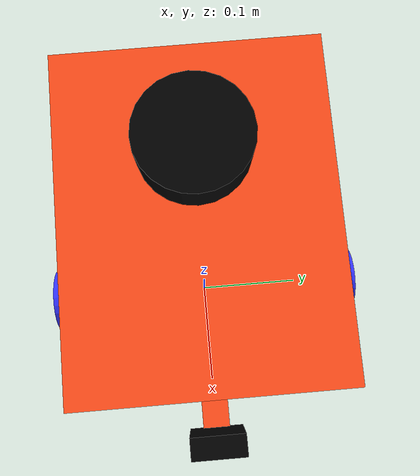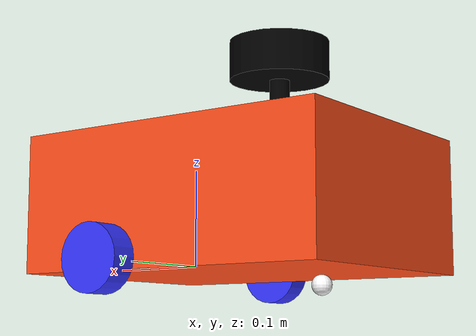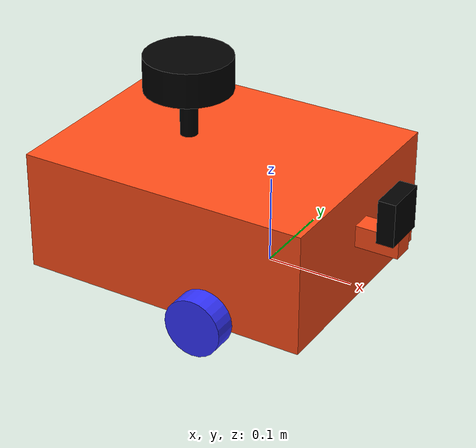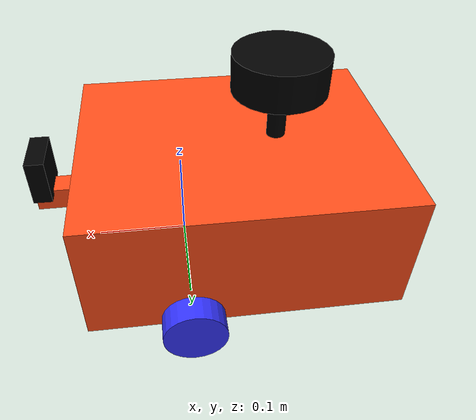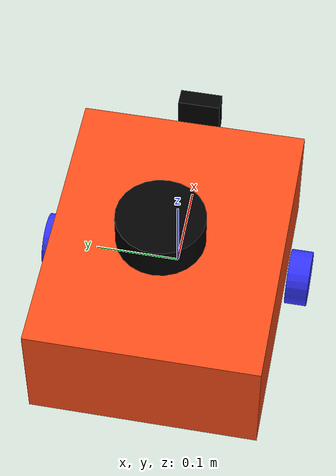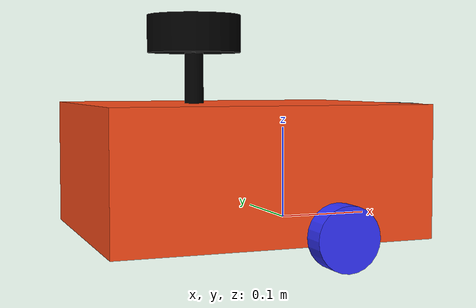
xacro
<?xml version="1.0"?>
<robot xmlns:xacro="http://www.ros.org/wiki/xacro" name="Robot" >

    <xacro:include filename="inertial_macros.xacro"/>
    <xacro:include filename="ros2_control.xacro" />

    <xacro:property name="chassis_length" value="0.335"/>
    <xacro:property name="chassis_width" value="0.265"/>
    <xacro:property name="chassis_height" value="0.138"/>
    <xacro:property name="chassis_mass" value="1.0"/>
    <xacro:property name="wheel_radius" value="0.033"/>
    <xacro:property name="wheel_thickness" value="0.026"/>
    <xacro:property name="wheel_mass" value="0.05"/>
    <xacro:property name="wheel_offset_x" value="0.226"/>
    <xacro:property name="wheel_offset_y" value="0.1485"/>
    <xacro:property name="wheel_offset_z" value="0.01"/>
    <xacro:property name="caster_wheel_radius" value="0.01"/>
    <xacro:property name="caster_wheel_mass" value="0.01"/>
    <xacro:property name="caster_wheel_offset_x" value="0.075"/>
    <xacro:property name="caster_wheel_offset_z" value="${wheel_offset_z - wheel_radius + caster_wheel_radius}"/>

    <material name="white">
        <color rgba="1 1 1 1" />
    </material>

    <material name="orange">
        <color rgba="1 0.3 0.1 1"/>
    </material>

    <material name="blue">
        <color rgba="0.2 0.2 1 1"/>
    </material>

    <material name="black">
        <color rgba="0 0 0 1"/>
    </material>

    <material name="red">
        <color rgba="1 0 0 1"/>
    </material>

    <!-- BASE LINK -->

    <link name="base_link">

    </link>

    <!-- BASE_FOOTPRINT LINK -->

    <joint name="base_footprint_joint" type="fixed">
        <parent link="base_link"/>
        <child link="base_footprint"/>
        <origin xyz="0 0 0" rpy="0 0 0"/>
    </joint>

    <link name="base_footprint">
    </link>

    <!-- CHASSIS LINK -->

    <joint name="chassis_joint" type="fixed">
        <parent link="base_link"/>
        <child link="chassis"/>
        <origin xyz="${-wheel_offset_x} 0 ${-wheel_offset_z}"/>
    </joint>

    <link name="chassis">
        <visual>
            <origin xyz="${chassis_length/2} 0 ${chassis_height/2}"/>
            <geometry>
                <box size="${chassis_length} ${chassis_width} ${chassis_height}"/>
            </geometry>
            <material name="orange"/>
        </visual>
        <collision>
            <origin xyz="${chassis_length/2} 0 ${chassis_height/2}"/>
            <geometry>
                <box size="${chassis_length} ${chassis_width} ${chassis_height}"/>
            </geometry>
        </collision>
        <xacro:inertial_box mass="0.5" x="${chassis_length}" y="${chassis_width}" z="${chassis_height}">
            <origin xyz="${chassis_length/2} 0 ${chassis_height/2}" rpy="0 0 0"/>
        </xacro:inertial_box>
    </link>

    <gazebo reference="chassis">
        <material>Gazebo/Orange</material>
    </gazebo>

    <!-- LEFT WHEEL LINK -->

    <joint name="left_wheel_joint" type="continuous">
        <parent link="base_link"/>
        <child link="left_wheel"/>
        <origin xyz="0 ${wheel_offset_y} 0" rpy="-${pi/2} 0 0" />
        <axis xyz="0 0 1"/>
    </joint>

    <link name="left_wheel">
        <visual>
            <geometry>
                <cylinder radius="${wheel_radius}" length="${wheel_thickness}"/>
            </geometry>
            <material name="blue"/>
        </visual>
        <collision>
            <geometry>
                <sphere radius="${wheel_radius}"/>
            </geometry>
        </collision>
        <xacro:inertial_cylinder mass="${wheel_mass}" length="${wheel_thickness}" radius="${wheel_radius}">
            <origin xyz="0 0 0" rpy="0 0 0"/>
        </xacro:inertial_cylinder>
    </link>

    <gazebo reference="left_wheel">
        <material>Gazebo/Blue</material>
        <mu1>1000000000000000.0</mu1>
        <mu2>1000000000000000.0</mu2>
        <kp>1000000000000.0</kp>
        <kd>10.0</kd>
        <minDepth>0.001</minDepth>
        <maxVel>0.1</maxVel>
        <fdir1>1 0 0</fdir1>
    </gazebo>

    <!-- RIGHT WHEEL LINK -->

    <joint name="right_wheel_joint" type="continuous">
        <parent link="base_link"/>
        <child link="right_wheel"/>
        <origin xyz="0 ${-wheel_offset_y} 0" rpy="${pi/2} 0 0" />
        <axis xyz="0 0 -1"/>
    </joint>

    <link name="right_wheel">
        <visual>
            <geometry>
                <cylinder radius="${wheel_radius}" length="${wheel_thickness}"/>
            </geometry>
            <material name="blue"/>
        </visual>
        <collision>
            <geometry>
                <sphere radius="${wheel_radius}"/>
            </geometry>
        </collision>
        <xacro:inertial_cylinder mass="${wheel_mass}" length="${wheel_thickness}" radius="${wheel_radius}">
            <origin xyz="0 0 0" rpy="0 0 0"/>
        </xacro:inertial_cylinder>
    </link>

    <gazebo reference="right_wheel">
        <material>Gazebo/Blue</material>
        <mu1>1000000000000000.0</mu1>
        <mu2>1000000000000000.0</mu2>
        <kp>1000000000000.0</kp>
        <kd>10.0</kd>
        <minDepth>0.001</minDepth>
        <maxVel>0.1</maxVel>
        <fdir1>1 0 0</fdir1>
    </gazebo>

    <!-- CASTER WHEEL LINK -->

    <joint name="caster_wheel_joint" type="fixed">
        <parent link="chassis"/>
        <child link="caster_wheel"/>
        <origin xyz="${caster_wheel_offset_x} 0 ${caster_wheel_offset_z}"/>
    </joint>

    <link name="caster_wheel">
        <visual>
            <geometry>
                <sphere radius="${caster_wheel_radius}"/>
            </geometry>
            <material name="white"/>
        </visual>
        <collision>
            <geometry>
                <sphere radius="${caster_wheel_radius}"/>
            </geometry>
        </collision>
        <xacro:inertial_sphere mass="${caster_wheel_mass}" radius="${caster_wheel_radius}">
            <origin xyz="0 0 0" rpy="0 0 0"/>
        </xacro:inertial_sphere>
    </link>

    <gazebo reference="caster_wheel">
        <material>Gazebo/White</material>
        <mu1>0.1</mu1>
        <mu2>0.1</mu2>
        <kp>1000000.0</kp>
        <kd>100.0</kd>
        <minDepth>0.001</minDepth>
        <maxVel>1.0</maxVel>
    </gazebo>

    <!-- Laser Link -->

    <joint name="laser_joint" type="fixed">
        <parent link="chassis"/>
        <child link="laser_frame"/>
        <origin xyz="0.122 0 0.212" rpy="0 0 0"/>
    </joint>

    <link name="laser_frame">
        <visual>
            <geometry>
                <cylinder radius="0.05" length="0.04"/>
            </geometry>
            <material name="black"/>
        </visual>
        <visual>
            <origin xyz="0 0 -0.05"/>
            <geometry>
                <cylinder radius="0.01" length="0.1"/>
            </geometry>
            <material name="black"/>
        </visual>
        <collision>
            <geometry>
                <cylinder radius="0.05" length="0.04"/>
            </geometry>
        </collision>
        <xacro:inertial_cylinder mass="0.1" length="0.04" radius="0.05">
            <origin xyz="0 0 0" rpy="0 0 0"/>
        </xacro:inertial_cylinder>
    </link>

    <!-- IMU Link -->

    <link name="imu_link">
        <visual>
            <geometry>
                <box size="0.005 0.005 0.005"/>
            </geometry>
        </visual>

        <collision>
            <geometry>
                <box size="0.005 0.005 0.005"/>
            </geometry>
        </collision>
        <inertial>
            <mass value="1e-5" />
            <origin xyz="0 0 0" rpy="0 0 0"/>
            <inertia ixx="1e-6" ixy="0" ixz="0" iyy="1e-6" iyz="0" izz="1e-6" />
        </inertial>
    </link>

    <joint name="imu_joint" type="fixed">
        <parent link="base_link"/>
        <child link="imu_link"/>
        <origin xyz="0 0 0.01"/>
    </joint>

    <gazebo reference="imu_link">
        <sensor name="imu_sensor" type="imu">
            <plugin filename="libgazebo_ros_imu_sensor.so" name="imu_plugin">
                <ros>
                    <namespace>/demo</namespace>
                    <remapping>~/out:=imu</remapping>
                </ros>
                <initial_orientation_as_reference>false</initial_orientation_as_reference>
            </plugin>
            <always_on>true</always_on>
            <update_rate>100</update_rate>
            <visualize>true</visualize>
            <imu>
                <angular_velocity>
                    <x>
                        <noise type="gaussian">
                            <mean>0.0</mean>
                            <stddev>2e-4</stddev>
                            <bias_mean>0.0000075</bias_mean>
                            <bias_stddev>0.0000008</bias_stddev>
                        </noise>
                    </x>
                    <y>
                        <noise type="gaussian">
                            <mean>0.0</mean>
                            <stddev>2e-4</stddev>
                            <bias_mean>0.0000075</bias_mean>
                            <bias_stddev>0.0000008</bias_stddev>
                        </noise>
                    </y>
                    <z>
                        <noise type="gaussian">
                            <mean>0.0</mean>
                            <stddev>2e-4</stddev>
                            <bias_mean>0.0000075</bias_mean>
                            <bias_stddev>0.0000008</bias_stddev>
                        </noise>
                    </z>
                </angular_velocity>
                <linear_acceleration>
                    <x>
                        <noise type="gaussian">
                            <mean>0.0</mean>
                            <stddev>1.7e-2</stddev>
                            <bias_mean>0.1</bias_mean>
                            <bias_stddev>0.001</bias_stddev>
                        </noise>
                    </x>
                    <y>
                        <noise type="gaussian">
                            <mean>0.0</mean>
                            <stddev>1.7e-2</stddev>
                            <bias_mean>0.1</bias_mean>
                            <bias_stddev>0.001</bias_stddev>
                        </noise>
                    </y>
                    <z>
                        <noise type="gaussian">
                            <mean>0.0</mean>
                            <stddev>1.7e-2</stddev>
                            <bias_mean>0.1</bias_mean>
                            <bias_stddev>0.001</bias_stddev>
                        </noise>
                    </z>
                </linear_acceleration>
            </imu>
        </sensor>
    </gazebo>

    <gazebo reference="laser_frame">
        <material>Gazebo/Black</material>

        <sensor name="laser" type="ray">
            <pose> 0 0 0 0 0 0 </pose>
            <visualize>false</visualize>
            <update_rate>10</update_rate>
            <ray>
                <scan>
                    <horizontal>
                        <samples>360</samples>
                        <min_angle>-3.14</min_angle>
                        <max_angle>3.14</max_angle>
                    </horizontal>
                </scan>
                <range>
                    <min>0.3</min>
                    <max>12</max>
                </range>
            </ray>
            <plugin name="laser_controller" filename="libgazebo_ros_ray_sensor.so">
                <ros>
                    <remapping>~/out:=scan</remapping>
                </ros>
                <output_type>sensor_msgs/LaserScan</output_type>
                <frame_name>laser_frame</frame_name>
            </plugin>
        </sensor>
    </gazebo>

    <!-- Camera Link -->

    <joint name="camera_mount_joint" type="fixed">
        <parent link="base_link"/>
        <child link="camera_mount"/>
        <axis xyz="0 0 0" />
        <origin xyz="0.134 0 ${chassis_height/2}" rpy="0 0 0"/>
    </joint>

    <link name="camera_mount">
        <visual>
            <origin xyz="0 0 0"/>
            <geometry>
                <box size="0.05 0.025 0.025"/>
            </geometry>
            <material name="orange"/>
        </visual>
        <collision>
            <origin xyz="0 0 0"/>
            <geometry>
                <box size="0.05 0.025 0.025"/>
            </geometry>
        </collision>
        <inertial>
            <mass value="1e-5" />
            <origin xyz="0 0 0" rpy="0 0 0"/>
            <inertia ixx="1e-6" ixy="0" ixz="0" iyy="1e-6" iyz="0" izz="1e-6" />
        </inertial>
    </link>

    <joint name="camera_joint" type="continuous">
        <parent link="camera_mount"/>
        <child link="camera_link"/>
        <axis xyz="0 0 1" />
        <origin xyz="0.015 0 0.0325" rpy="0 0 0"/>
    </joint>

    <link name="camera_link">
        <visual>
            <origin xyz="0 0 0" rpy="0 0 0"/>
            <geometry>
                <box size="0.02 0.05 0.05"/>
            </geometry>
            <material name="black"/>
        </visual>

        <collision>
            <origin xyz="0 0 0" rpy="0 0 0"/>
            <geometry>
                <box size="0.02 0.05 0.05"/>
            </geometry>
        </collision>

        <inertial>
            <mass value="1e-5" />
            <origin xyz="0 0 0" rpy="0 0 0"/>
            <inertia ixx="1e-6" ixy="0" ixz="0" iyy="1e-6" iyz="0" izz="1e-6" />
        </inertial>
    </link>

    <gazebo reference="camera_link">
        <sensor type="camera" name="camera1">
            <update_rate>30.0</update_rate>
            <camera name="head">
                <horizontal_fov>1.15</horizontal_fov>
                <image>
                    <width>2304</width>
                    <height>1296</height>
                    <format>R8G8B8</format>
                </image>
                <clip>
                    <near>0.02</near>
                    <far>300</far>
                </clip>
                <noise>
                    <type>gaussian</type>
                    <mean>0.0</mean>
                    <stddev>0.007</stddev>
                </noise>
            </camera>
            <plugin name="camera_controller" filename="libgazebo_ros_camera.so">
                <alwaysOn>true</alwaysOn>
                <updateRate>0.0</updateRate>
                <cameraName>camera</cameraName>
                <imageTopicName>image_raw</imageTopicName>
                <cameraInfoTopicName>camera_info</cameraInfoTopicName>
                <frameName>camera_link</frameName>
                <hackBaseline>0.07</hackBaseline>
                <distortionK1>0.0</distortionK1>
                <distortionK2>0.0</distortionK2>
                <distortionK3>0.0</distortionK3>
                <distortionT1>0.0</distortionT1>
                <distortionT2>0.0</distortionT2>
            </plugin>
        </sensor>
    </gazebo>

    <!-- ros2_control plugin and parameter file -->

    <gazebo>
        <plugin filename='libgazebo_ros2_control.so' name='gazebo_ros2_control'>
            <parameters> $(find robot_bringup)/config/ros2_control_param.yaml </parameters>
        </plugin>
    </gazebo>

</robot>
